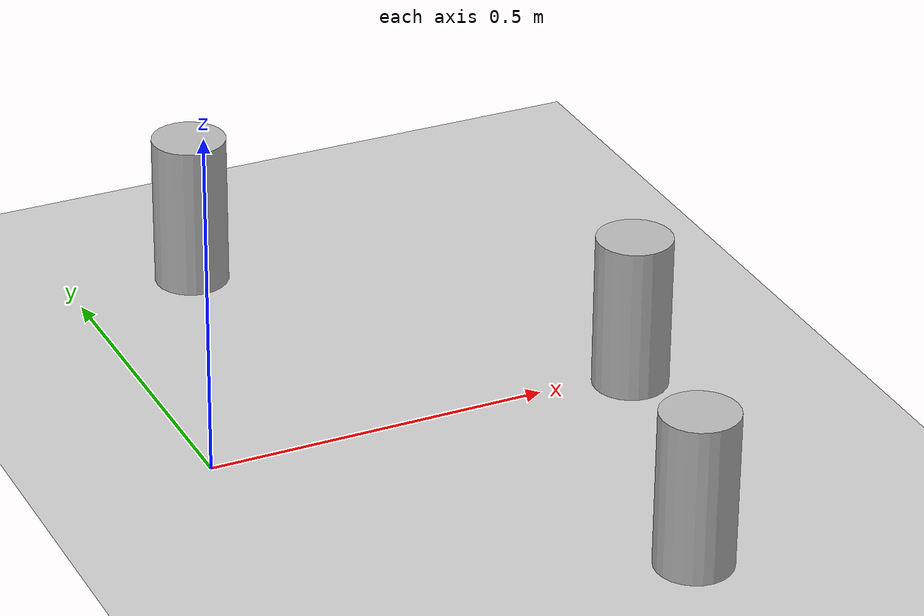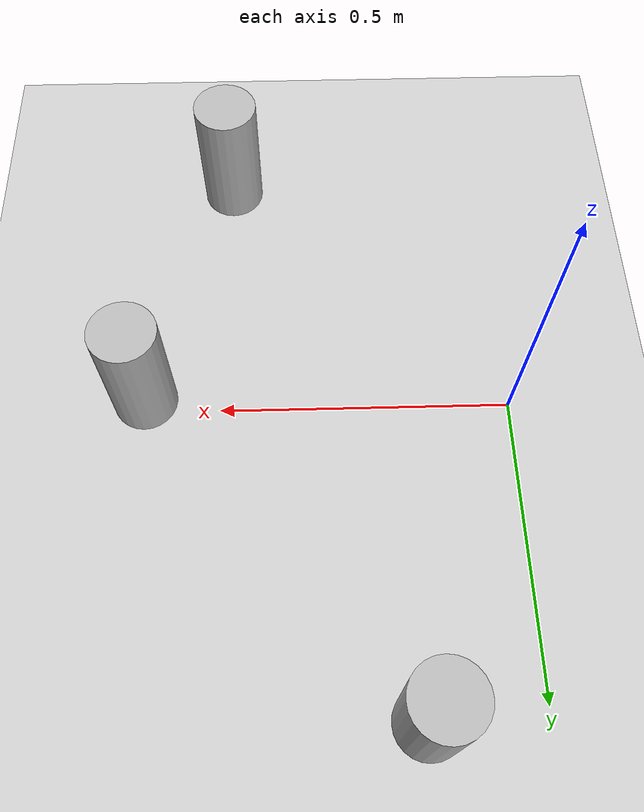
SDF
<sdf version="1.7">
 <world name="default">
  <light name="sun" type="directional">
   <pose>0 0 10 0 -0 0</pose>
   <diffuse>0.8 0.8 0.8 1</diffuse>
   <specular>0.2 0.2 0.2 1</specular>
   <attenuation>
    <range>1000</range>
    <constant>0.9</constant>
    <linear>0.01</linear>
    <quadratic>0.001</quadratic>
   </attenuation>
   <direction>-0.5 0.1 -0.9</direction>
   <spot><inner_angle>0</inner_angle><outer_angle>0</outer_angle><falloff>0</falloff></spot>
  </light>
  <model name="ground_plane">
   <static>1</static>
   <link name="link">
    <collision name="collision">
     <geometry><plane><normal>0 0 1</normal><size>100 100</size></plane></geometry>
     <surface>
      <contact><collide_bitmask>65535</collide_bitmask></contact>
      <friction><ode><mu>100</mu><mu2>50</mu2></ode></friction>
     </surface>
    </collision>
    <visual name="visual">
     <cast_shadows>0</cast_shadows>
     <geometry><plane><normal>0 0 1</normal><size>100 100</size></plane></geometry>
     <material>
      <script><uri>file://media/materials/scripts/gazebo.material</uri><name>Gazebo/Grey</name></script>
     </material>
    </visual>
   </link>
  </model>
  <gravity>0 0 -9.8</gravity>
  <magnetic_field>6e-06 2.3e-05 -4.2e-05</magnetic_field>
  <atmosphere type="adiabatic"/>
  <physics type="ode">
   <max_step_size>0.001</max_step_size>
   <real_time_factor>1</real_time_factor>
   <real_time_update_rate>1000</real_time_update_rate>
  </physics>
  <scene><ambient>0.4 0.4 0.4 1</ambient><background>0.7 0.7 0.7 1</background><shadows>1</shadows></scene>
  <spherical_coordinates>
   <surface_model>EARTH_WGS84</surface_model>
   <latitude_deg>0</latitude_deg>
   <longitude_deg>0</longitude_deg>
   <elevation>0</elevation>
   <heading_deg>0</heading_deg>
  </spherical_coordinates>
  <model name="beer">
   <link name="link">
    <pose>0 0 0.115 0 -0 0</pose>
    <inertial>
     <mass>0.39</mass>
     <inertia><ixx>0.00058</ixx><ixy>0</ixy><ixz>0</ixz><iyy>0.00058</iyy><iyz>0</iyz><izz>0.00019</izz></inertia>
    </inertial>
    <collision name="collision">
     <geometry><cylinder><radius>0.055</radius><length>0.23</length></cylinder></geometry>
    </collision>
    <visual name="visual">
     <geometry><cylinder><radius>0.055</radius><length>0.23</length></cylinder></geometry>
     <material>
      <script>
       <uri>model://beer/materials/scripts</uri>
       <uri>model://beer/materials/textures</uri>
       <name>Beer/Diffuse</name>
      </script>
     </material>
    </visual>
   </link>
   <pose>0.181459 0.518829 -2e-06 1e-06 -0 -3e-06</pose>
  </model>
  <model name="beer_0">
   <link name="link">
    <pose>0 0 0.115 0 -0 0</pose>
    <inertial>
     <mass>0.39</mass>
     <inertia><ixx>0.00058</ixx><ixy>0</ixy><ixz>0</ixz><iyy>0.00058</iyy><iyz>0</iyz><izz>0.00019</izz></inertia>
    </inertial>
    <collision name="collision">
     <geometry><cylinder><radius>0.055</radius><length>0.23</length></cylinder></geometry>
    </collision>
    <visual name="visual">
     <geometry><cylinder><radius>0.055</radius><length>0.23</length></cylinder></geometry>
     <material>
      <script>
       <uri>model://beer/materials/scripts</uri>
       <uri>model://beer/materials/textures</uri>
       <name>Beer/Diffuse</name>
      </script>
     </material>
    </visual>
   </link>
   <pose>0.629902 -0.02332 -7e-06 -1e-06 -0 -2e-06</pose>
  </model>
  <model name="beer_1">
   <link name="link">
    <pose>0 0 0.115 0 -0 0</pose>
    <inertial>
     <mass>0.39</mass>
     <inertia><ixx>0.00058</ixx><ixy>0</ixy><ixz>0</ixz><iyy>0.00058</iyy><iyz>0</iyz><izz>0.00019</izz></inertia>
    </inertial>
    <collision name="collision">
     <geometry><cylinder><radius>0.055</radius><length>0.23</length></cylinder></geometry>
    </collision>
    <visual name="visual">
     <geometry><cylinder><radius>0.055</radius><length>0.23</length></cylinder></geometry>
     <material>
      <script>
       <uri>model://beer/materials/scripts</uri>
       <uri>model://beer/materials/textures</uri>
       <name>Beer/Diffuse</name>
      </script>
     </material>
    </visual>
   </link>
   <pose>0.484054 -0.484017 -2e-06 1e-06 0 -1e-06</pose>
  </model>
 </world>
</sdf>
